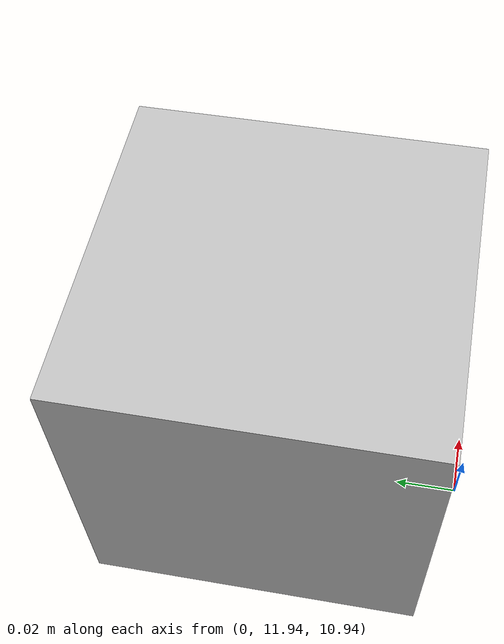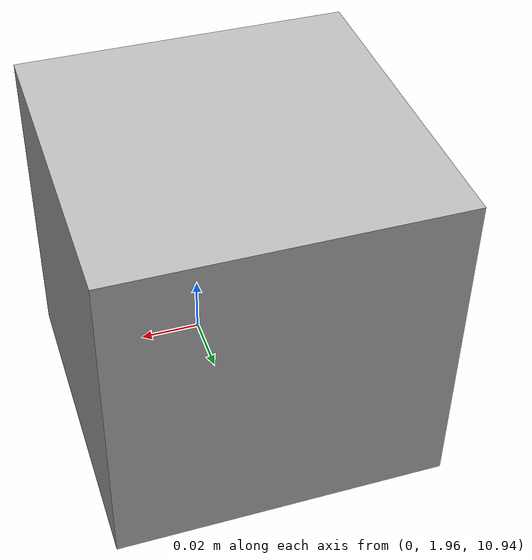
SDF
<sdf version="1.6">
 <world name="default">
  <light type="directional" name="sun">
   <diffuse>1.0 1.0 1.0 1.0</diffuse>
   <specular>0.2 0.2 0.2 1</specular>
   <direction>-1.0 0.0 -0.2</direction>
  </light>
  <include><uri>model://ground_plane</uri></include>
  <model name="wide_angle_cameras_near_heightmap">
   <static>true</static>
   <pose>0 2 5.2 0 0 0</pose>
   <link name="link">
    <visual name="visual"><geometry><box><size>0.1 0.1 0.1</size></box></geometry></visual>
    <sensor name="camera_sensor_lensflare" type="wideanglecamera">
     <camera>
      <horizontal_fov>3.14159</horizontal_fov>
      <image><width>320</width><height>240</height></image>
      <clip><near>0.1</near><far>100</far></clip>
      <lens>
       <type>equidistant</type>
       <scale_to_hfov>true</scale_to_hfov>
       <cutoff_angle>1.5707</cutoff_angle>
       <env_texture_size>512</env_texture_size>
      </lens>
     </camera>
     <always_on>1</always_on>
     <update_rate>25</update_rate>
     <visualize>true</visualize>
     <plugin name="lensflare" filename="libLensFlareSensorPlugin.so"/>
    </sensor>
    <sensor name="camera_sensor_without_lensflare" type="wideanglecamera">
     <camera>
      <horizontal_fov>3.14159</horizontal_fov>
      <image><width>320</width><height>240</height></image>
      <clip><near>0.1</near><far>100</far></clip>
      <lens>
       <type>equidistant</type>
       <scale_to_hfov>true</scale_to_hfov>
       <cutoff_angle>1.5707</cutoff_angle>
       <env_texture_size>512</env_texture_size>
      </lens>
     </camera>
     <always_on>1</always_on>
     <update_rate>25</update_rate>
     <visualize>true</visualize>
    </sensor>
   </link>
  </model>
  <model name="wide_angle_cameras_above_heightmap">
   <static>true</static>
   <pose>0 2 11.0 0 0 0</pose>
   <link name="link">
    <visual name="visual"><geometry><box><size>0.1 0.1 0.1</size></box></geometry></visual>
    <sensor name="camera_sensor_lensflare" type="wideanglecamera">
     <camera>
      <horizontal_fov>3.14159</horizontal_fov>
      <image><width>320</width><height>240</height></image>
      <clip><near>0.1</near><far>100</far></clip>
      <lens>
       <type>equidistant</type>
       <scale_to_hfov>true</scale_to_hfov>
       <cutoff_angle>1.5707</cutoff_angle>
       <env_texture_size>512</env_texture_size>
      </lens>
     </camera>
     <always_on>1</always_on>
     <update_rate>25</update_rate>
     <visualize>true</visualize>
     <plugin name="lensflare" filename="libLensFlareSensorPlugin.so"/>
    </sensor>
    <sensor name="camera_sensor_without_lensflare" type="wideanglecamera">
     <camera>
      <horizontal_fov>3.14159</horizontal_fov>
      <image><width>320</width><height>240</height></image>
      <clip><near>0.1</near><far>100</far></clip>
      <lens>
       <type>equidistant</type>
       <scale_to_hfov>true</scale_to_hfov>
       <cutoff_angle>1.5707</cutoff_angle>
       <env_texture_size>512</env_texture_size>
      </lens>
     </camera>
     <always_on>1</always_on>
     <update_rate>25</update_rate>
     <visualize>true</visualize>
    </sensor>
   </link>
  </model>
  <model name="wide_angle_cameras_occluded_low">
   <static>true</static>
   <pose>0 12 5.2 0 0 0</pose>
   <link name="link">
    <visual name="visual"><geometry><box><size>0.1 0.1 0.1</size></box></geometry></visual>
    <sensor name="camera_sensor_lensflare" type="wideanglecamera">
     <camera>
      <horizontal_fov>3.14159</horizontal_fov>
      <image><width>320</width><height>240</height></image>
      <clip><near>0.1</near><far>100</far></clip>
      <lens>
       <type>equidistant</type>
       <scale_to_hfov>true</scale_to_hfov>
       <cutoff_angle>1.5707</cutoff_angle>
       <env_texture_size>512</env_texture_size>
      </lens>
     </camera>
     <always_on>1</always_on>
     <update_rate>25</update_rate>
     <visualize>true</visualize>
     <plugin name="lensflare" filename="libLensFlareSensorPlugin.so"/>
    </sensor>
    <sensor name="camera_sensor_without_lensflare" type="wideanglecamera">
     <camera>
      <horizontal_fov>3.14159</horizontal_fov>
      <image><width>320</width><height>240</height></image>
      <clip><near>0.1</near><far>100</far></clip>
      <lens>
       <type>equidistant</type>
       <scale_to_hfov>true</scale_to_hfov>
       <cutoff_angle>1.5707</cutoff_angle>
       <env_texture_size>512</env_texture_size>
      </lens>
     </camera>
     <always_on>1</always_on>
     <update_rate>25</update_rate>
     <visualize>true</visualize>
    </sensor>
   </link>
  </model>
  <model name="wide_angle_cameras_occluded_high">
   <static>true</static>
   <pose>0 12 11.0 0 0 0</pose>
   <link name="link">
    <visual name="visual"><geometry><box><size>0.1 0.1 0.1</size></box></geometry></visual>
    <sensor name="camera_sensor_lensflare" type="wideanglecamera">
     <camera>
      <horizontal_fov>3.14159</horizontal_fov>
      <image><width>320</width><height>240</height></image>
      <clip><near>0.1</near><far>100</far></clip>
      <lens>
       <type>equidistant</type>
       <scale_to_hfov>true</scale_to_hfov>
       <cutoff_angle>1.5707</cutoff_angle>
       <env_texture_size>512</env_texture_size>
      </lens>
     </camera>
     <always_on>1</always_on>
     <update_rate>25</update_rate>
     <visualize>true</visualize>
     <plugin name="lensflare" filename="libLensFlareSensorPlugin.so"/>
    </sensor>
    <sensor name="camera_sensor_without_lensflare" type="wideanglecamera">
     <camera>
      <horizontal_fov>3.14159</horizontal_fov>
      <image><width>320</width><height>240</height></image>
      <clip><near>0.1</near><far>100</far></clip>
      <lens>
       <type>equidistant</type>
       <scale_to_hfov>true</scale_to_hfov>
       <cutoff_angle>1.5707</cutoff_angle>
       <env_texture_size>512</env_texture_size>
      </lens>
     </camera>
     <always_on>1</always_on>
     <update_rate>25</update_rate>
     <visualize>true</visualize>
    </sensor>
   </link>
  </model>
  <model name="wide_angle_cameras_occluded_higher">
   <static>true</static>
   <pose>0 12 21.0 0 0 0</pose>
   <link name="link">
    <visual name="visual"><geometry><box><size>0.1 0.1 0.1</size></box></geometry></visual>
    <sensor name="camera_sensor_lensflare" type="wideanglecamera">
     <camera>
      <horizontal_fov>3.14159</horizontal_fov>
      <image><width>320</width><height>240</height></image>
      <clip><near>0.1</near><far>100</far></clip>
      <lens>
       <type>equidistant</type>
       <scale_to_hfov>true</scale_to_hfov>
       <cutoff_angle>1.5707</cutoff_angle>
       <env_texture_size>512</env_texture_size>
      </lens>
     </camera>
     <always_on>1</always_on>
     <update_rate>25</update_rate>
     <visualize>true</visualize>
     <plugin name="lensflare" filename="libLensFlareSensorPlugin.so"/>
    </sensor>
    <sensor name="camera_sensor_without_lensflare" type="wideanglecamera">
     <camera>
      <horizontal_fov>3.14159</horizontal_fov>
      <image><width>320</width><height>240</height></image>
      <clip><near>0.1</near><far>100</far></clip>
      <lens>
       <type>equidistant</type>
       <scale_to_hfov>true</scale_to_hfov>
       <cutoff_angle>1.5707</cutoff_angle>
       <env_texture_size>512</env_texture_size>
      </lens>
     </camera>
     <always_on>1</always_on>
     <update_rate>25</update_rate>
     <visualize>true</visualize>
    </sensor>
   </link>
  </model>
  <model name="slow_wide_angle_cameras">
   <static>true</static>
   <pose>0 12 11.0 0 0 0</pose>
   <link name="link">
    <visual name="visual"><geometry><box><size>0.1 0.1 0.1</size></box></geometry></visual>
    <sensor name="camera_sensor_lensflare" type="wideanglecamera">
     <camera>
      <horizontal_fov>3.14159</horizontal_fov>
      <image><width>320</width><height>240</height></image>
      <clip><near>0.1</near><far>100</far></clip>
      <lens>
       <type>equidistant</type>
       <scale_to_hfov>true</scale_to_hfov>
       <cutoff_angle>1.5707</cutoff_angle>
       <env_texture_size>512</env_texture_size>
      </lens>
     </camera>
     <always_on>1</always_on>
     <update_rate>1</update_rate>
     <visualize>true</visualize>
     <plugin name="lensflare" filename="libLensFlareSensorPlugin.so"/>
    </sensor>
    <sensor name="camera_sensor_without_lensflare" type="wideanglecamera">
     <camera>
      <horizontal_fov>3.14159</horizontal_fov>
      <image><width>320</width><height>240</height></image>
      <clip><near>0.1</near><far>100</far></clip>
      <lens>
       <type>equidistant</type>
       <scale_to_hfov>true</scale_to_hfov>
       <cutoff_angle>1.5707</cutoff_angle>
       <env_texture_size>512</env_texture_size>
      </lens>
     </camera>
     <always_on>1</always_on>
     <update_rate>1</update_rate>
     <visualize>true</visualize>
    </sensor>
   </link>
  </model>
 </world>
</sdf>
